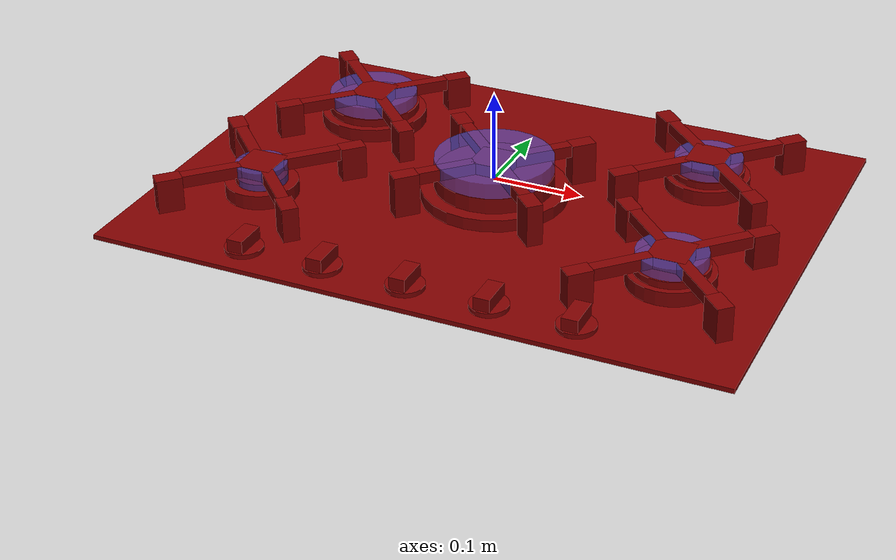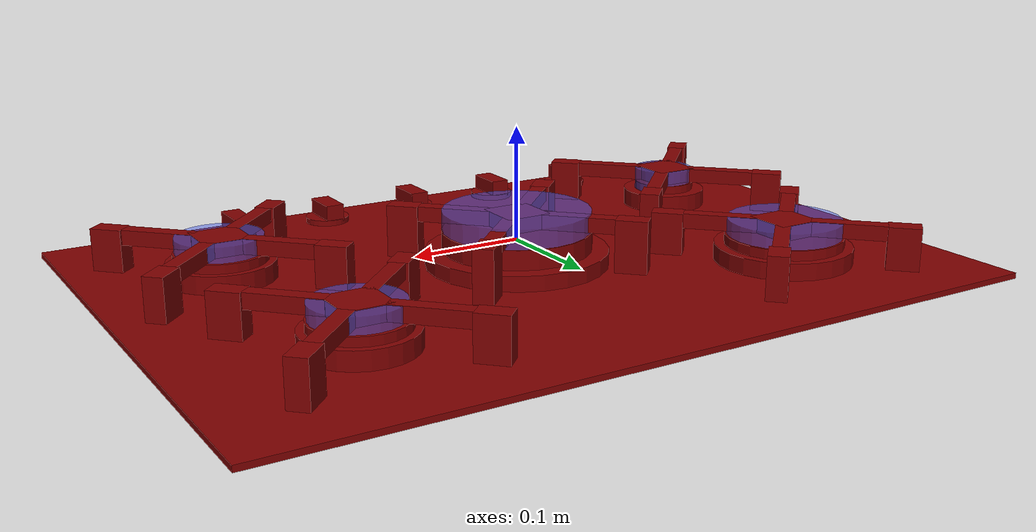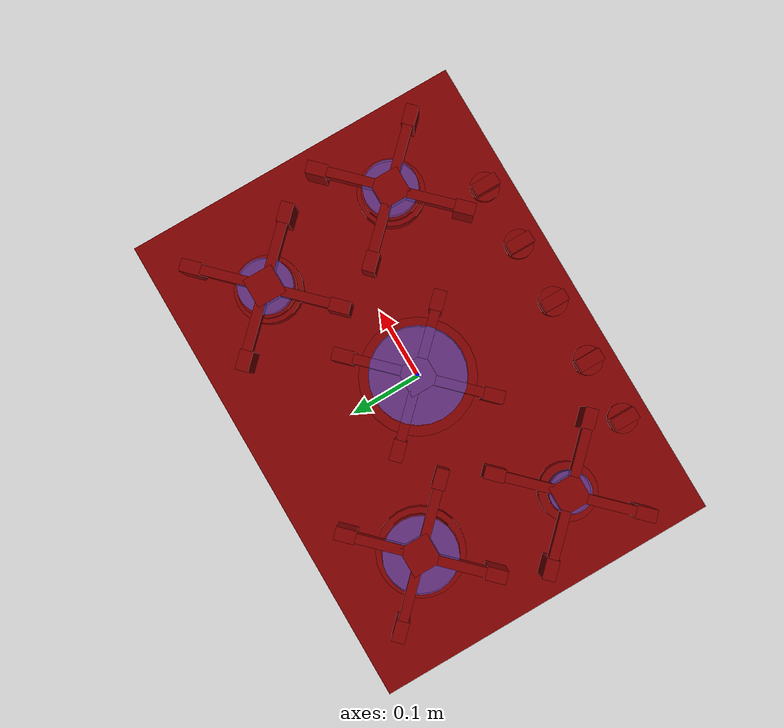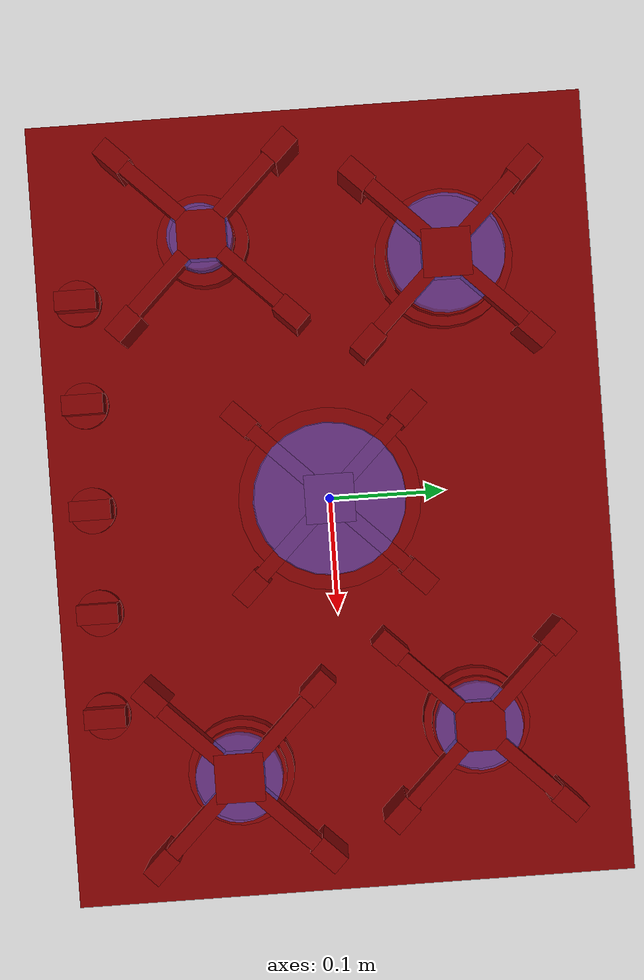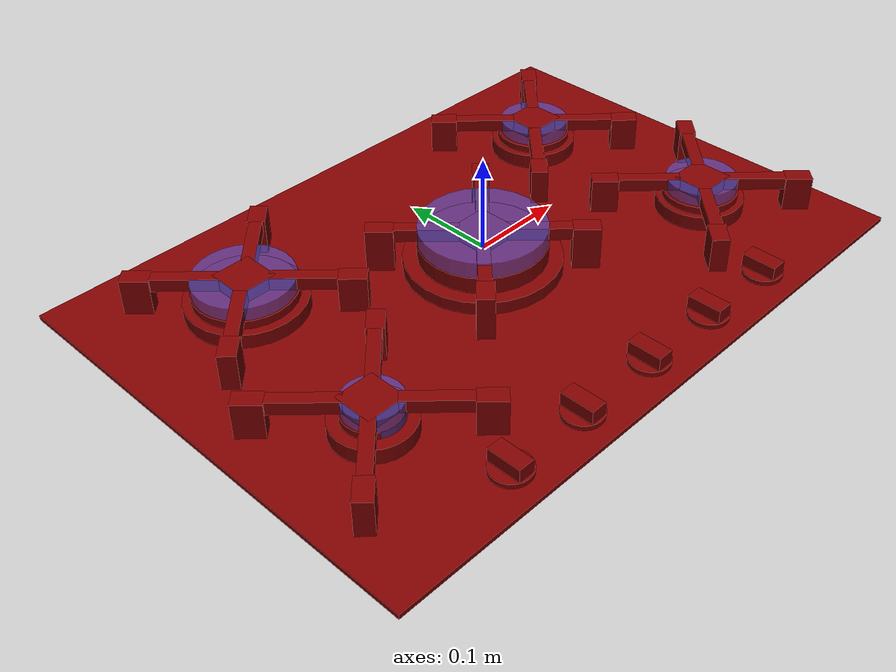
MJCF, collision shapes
<?xml version='1.0' encoding='UTF-8'?>
<mujoco model="model">
  <compiler angle="radian"/>
  <asset>
    <mesh file="visuals/knob_center.obj" name="knob_center_vis"/>
    <mesh file="visuals/knob_front_left.obj" name="knob_front_left_vis"/>
    <mesh file="visuals/knob_front_right.obj" name="knob_front_right_vis"/>
    <mesh file="visuals/knob_rear_left.obj" name="knob_rear_left_vis"/>
    <mesh file="visuals/knob_rear_right.obj" name="knob_rear_right_vis"/>
    <mesh file="visuals/Body001.obj" name="Body001_vis"/>
    <mesh file="visuals/Body002.obj" name="Body002_vis"/>
    <texture file="visuals/T_BC001.png" name="Body001_material" type="2d"/>
    <material name="Body001_material" rgba="1 1 1 1.0" texture="Body001_material" shininess="0.4472135901451111" specular="0.7"/>
    <texture file="visuals/T_BC001.png" name="knob_center_material" type="2d"/>
    <material name="knob_center_material" rgba="1 1 1 1.0" texture="knob_center_material" shininess="0.4472135901451111" specular="0.3103448502657381"/>
    <texture file="visuals/T_BC001.png" name="knob_front_left_material" type="2d"/>
    <material name="knob_front_left_material" rgba="1 1 1 1.0" texture="knob_front_left_material" shininess="0.4472135901451111" specular="0.3103448502657381"/>
    <texture file="visuals/T_BC001.png" name="knob_front_right_material" type="2d"/>
    <material name="knob_front_right_material" rgba="1 1 1 1.0" texture="knob_front_right_material" shininess="0.4472135901451111" specular="0.3103448502657381"/>
    <texture file="visuals/T_BC001.png" name="knob_rear_left_material" type="2d"/>
    <material name="knob_rear_left_material" rgba="1 1 1 1.0" texture="knob_rear_left_material" shininess="0.4472135901451111" specular="0.3103448502657381"/>
    <texture file="visuals/T_BC001.png" name="knob_rear_right_material" type="2d"/>
    <material name="knob_rear_right_material" rgba="1 1 1 1.0" texture="knob_rear_right_material" shininess="0.4472135901451111" specular="0.3103448502657381"/>
    <texture file="visuals/T_BC001.png" name="Body002_material" type="2d"/>
    <material name="Body002_material" rgba="1 1 1 1.0" texture="Body002_material" shininess="0.4472135901451111" specular="0.3103448502657381"/>
  </asset>
  <default>
    <default class="visual">
      <geom conaffinity="0" contype="0" group="1" type="mesh"/>
    </default>
    <default class="collision">
      <geom group="0" rgba="0.5 0 0 0.5"/>
    </default>
    <default class="spawn">
      <geom group="0" rgba="1 1 1 0.5" contype="0" conaffinity="0"/>
      <site group="0" rgba="1 1 1 0.5"/>
    </default>
    <default class="region">
      <geom group="1" conaffinity="0" contype="0" rgba="0 1 0 0"/>
    </default>
  </default>
  <worldbody>
    <body>
      <body name="object">
        <site type="cylinder" rgba="0.3 0.4 1 0.5" size="0.037646256387233734 0.013886827044188976" pos="0.20518821477890015 0.11482580006122589 0.0023632096126675606" name="burner_on_rear_right"/>
        <site type="cylinder" rgba="0.3 0.4 1 0.5" size="0.050764523446559906 0.013934074901044369" pos="-0.2051640748977661 0.11541546136140823 0.0027812246698886156" name="burner_on_rear_left"/>
        <site type="cylinder" rgba="0.3 0.4 1 0.5" size="0.03772476688027382 0.013412759639322758" pos="0.2352708876132965 -0.09508250653743744 0.0029436019249260426" name="burner_on_front_right"/>
        <site type="cylinder" rgba="0.3 0.4 1 0.5" size="0.02843535505235195 0.01365493144840002" pos="-0.23370617628097534 -0.09594857692718506 0.002861478365957737" name="burner_on_front_left"/>
        <site type="cylinder" rgba="0.3 0.4 1 0.5" size="0.06542050093412399 0.016313862055540085" pos="-9.237730409950018e-06 -0.00022010214161127806 0.011241933330893517" name="burner_on_center"/>
        <geom mesh="Body001_vis" type="mesh" solimp="0.998 0.998 0.001" solref="0.001 1" density="100" friction="0.95 0.3 0.1" class="visual" material="Body001_material"/>
        <geom class="collision" type="box" pos="0.0 -0.00010152636968996376 -0.023606056347489357" size="0.34981995820999146 0.24872340261936188 0.0025431355461478233" quat="1.0 0.0 0.0 0.0"/>
        <body name="knob_center">
          <joint axis="0.0 0.0 1.0" pos="-0.004781246185302734 -0.21114622056484222 -0.01152818650007248" limited="true" name="knob_center_joint" range="0.0 3.6651914291880923" type="hinge" damping="0.05" armature="0.001"/>
          <geom mesh="knob_center_vis" type="mesh" solimp="0.998 0.998 0.001" solref="0.001 1" density="100" friction="0.95 0.3 0.1" class="visual" material="knob_center_material"/>
          <geom class="collision" type="cylinder" pos="-0.004177682101726532 -0.2113659530878067 -0.01804817095398903" size="0.020649556070566177 0.002601386047899723" quat="1.0 0.0 0.0 0.0"/>
          <geom class="collision" type="box" pos="-0.004684634506702423 -0.2109227180480957 -0.00935716088861227" size="0.008751471526920795 0.018220702186226845 0.008115699514746666" quat="1.0 0.0 0.0 0.0"/>
        </body>
        <body name="knob_front_left">
          <joint axis="0.0 0.0 1.0" pos="-0.18965204060077667 -0.21114622056484222 -0.01152818650007248" limited="true" name="knob_front_left_joint" range="0.0 3.6651914291880923" type="hinge" damping="0.05" armature="0.001"/>
          <geom mesh="knob_front_left_vis" type="mesh" solimp="0.998 0.998 0.001" solref="0.001 1" density="100" friction="0.95 0.3 0.1" class="visual" material="knob_front_left_material"/>
          <geom class="collision" type="cylinder" pos="-0.1891675889492035 -0.2113659530878067 -0.01804817095398903" size="0.020649556070566177 0.002601386047899723" quat="1.0 0.0 0.0 0.0"/>
          <geom class="collision" type="box" pos="-0.18967454135417938 -0.2109227180480957 -0.00935716088861227" size="0.008751466870307922 0.018220694735646248 0.008115697652101517" quat="1.0 0.0 0.0 0.0"/>
        </body>
        <body name="knob_front_right">
          <joint axis="0.0 0.0 1.0" pos="0.1795564889907837 -0.21114622056484222 -0.01152818650007248" limited="true" name="knob_front_right_joint" range="0.0 3.6651914291880923" type="hinge" damping="0.05" armature="0.001"/>
          <geom mesh="knob_front_right_vis" type="mesh" solimp="0.998 0.998 0.001" solref="0.001 1" density="100" friction="0.95 0.3 0.1" class="visual" material="knob_front_right_material"/>
          <geom class="collision" type="cylinder" pos="0.17938269674777985 -0.2113659530878067 -0.01804817095398903" size="0.020649556070566177 0.002601386047899723" quat="1.0 0.0 0.0 0.0"/>
          <geom class="collision" type="box" pos="0.17887574434280396 -0.2109227180480957 -0.00935716088861227" size="0.008751475252211094 0.01822071149945259 0.008115701377391815" quat="1.0 0.0 0.0 0.0"/>
        </body>
        <body name="knob_rear_left">
          <joint axis="0.0 0.0 1.0" pos="-0.09739432483911514 -0.21114622056484222 -0.01152818650007248" limited="true" name="knob_rear_left_joint" range="0.0 3.6651914291880923" type="hinge" damping="0.05" armature="0.001"/>
          <geom mesh="knob_rear_left_vis" type="mesh" solimp="0.998 0.998 0.001" solref="0.001 1" density="100" friction="0.95 0.3 0.1" class="visual" material="knob_rear_left_material"/>
          <geom class="collision" type="cylinder" pos="-0.09775850176811218 -0.2113659530878067 -0.01804817095398903" size="0.020649556070566177 0.002601386047899723" quat="1.0 0.0 0.0 0.0"/>
          <geom class="collision" type="box" pos="-0.09805980324745178 -0.2109227180480957 -0.00935716088861227" size="0.008751469664275646 0.018220698460936546 0.008115698583424091" quat="1.0 0.0 0.0 0.0"/>
        </body>
        <body name="knob_rear_right">
          <joint axis="0.0 0.0 1.0" pos="0.0874764621257782 -0.21114622056484222 -0.01152818650007248" limited="true" name="knob_rear_right_joint" range="0.0 3.6651914291880923" type="hinge" damping="0.05" armature="0.001"/>
          <geom mesh="knob_rear_right_vis" type="mesh" solimp="0.998 0.998 0.001" solref="0.001 1" density="100" friction="0.95 0.3 0.1" class="visual" material="knob_rear_right_material"/>
          <geom class="collision" type="cylinder" pos="0.08741695433855057 -0.2113659530878067 -0.01804817095398903" size="0.020649556070566177 0.002601386047899723" quat="1.0 0.0 0.0 0.0"/>
          <geom class="collision" type="box" pos="0.08691000193357468 -0.2109227180480957 -0.00935716088861227" size="0.008751473389565945 0.018220707774162292 0.00811570044606924" quat="1.0 0.0 0.0 0.0"/>
        </body>
        <body name="Body002">
          <geom mesh="Body002_vis" type="mesh" solimp="0.998 0.998 0.001" solref="0.001 1" density="100" friction="0.95 0.3 0.1" class="visual" material="Body002_material"/>
          <geom class="collision" type="cylinder" pos="0.0 0.0 -0.014684646390378475" size="0.08087969571352005 0.007292779628187418" quat="1.0 0.0 0.0 0.0"/>
          <geom class="collision" type="cylinder" pos="0.0 0.0 -0.004071259871125221" size="0.06599336862564087 0.014198735356330872" quat="1.0 0.0 0.0 0.0"/>
          <geom class="collision" type="cylinder" pos="-0.23466601967811584 -0.09524428099393845 -0.003128181677311659" size="0.028715677559375763 0.006100674159824848" quat="1.0 0.0 0.0 0.0"/>
          <geom class="collision" type="cylinder" pos="-0.23466601967811584 -0.09558387100696564 -0.01278682891279459" size="0.040325358510017395 0.008080662228167057" quat="1.0 0.0 0.0 0.0"/>
          <geom class="collision" type="cylinder" pos="-0.20493434369564056 0.11508061736822128 -0.01825105771422386" size="0.06089472025632858 0.012202486395835876" quat="1.0 0.0 0.0 0.0"/>
          <geom class="collision" type="cylinder" pos="-0.20493434369564056 0.11559342592954636 -0.0059404531493783" size="0.052325379103422165 0.008841805160045624" quat="1.0 0.0 0.0 0.0"/>
          <geom class="collision" type="cylinder" pos="0.2042791098356247 0.11553427577018738 -0.004027435556054115" size="0.040254417806863785 0.006802086252719164" quat="1.0 0.0 0.0 0.0"/>
          <geom class="collision" type="cylinder" pos="0.2042791098356247 0.11513976752758026 -0.014519266784191132" size="0.046846892684698105 0.009387490339577198" quat="1.0 0.0 0.0 0.0"/>
          <geom class="collision" type="cylinder" pos="0.2348407506942749 -0.09477153420448303 -0.014519266784191132" size="0.046846892684698105 0.009387490339577198" quat="1.0 0.0 0.0 0.0"/>
          <geom class="collision" type="cylinder" pos="0.2348407506942749 -0.09437702596187592 -0.004027435556054115" size="0.040254417806863785 0.006802086252719164" quat="1.0 0.0 0.0 0.0"/>
          <geom class="collision" type="box" pos="-6.755338836228475e-05 -8.150098437909037e-05 0.01903052069246769" size="0.021046988666057587 0.02128998562693596 0.006638393737375736" quat="1.0 0.0 0.0 0.0"/>
          <geom class="collision" type="box" pos="-0.03920435160398483 0.03924737125635147 0.01903052069246769" size="0.03268332779407501 0.006654288619756699 0.006638393737375736" quat="0.9223182201385498 0.0 -0.0 -0.3864312469959259"/>
          <geom class="collision" type="box" pos="-0.07194513082504272 0.07219017297029495 0.002201380906626582" size="0.014080856926739216 0.008914109319448471 0.02346753142774105" quat="0.9223182201385498 0.0 -0.0 -0.3864312469959259"/>
          <geom class="collision" type="box" pos="0.07205472886562347 0.07219017297029495 0.002201380906626582" size="0.014080856926739216 0.008914109319448471 0.02346753142774105" quat="0.9223182201385498 0.0 0.0 0.3864312469959259"/>
          <geom class="collision" type="box" pos="0.03931394964456558 0.03924737125635147 0.01903052069246769" size="0.03268332779407501 0.006654288619756699 0.006638393737375736" quat="0.9223182201385498 0.0 0.0 0.3864312469959259"/>
          <geom class="collision" type="box" pos="0.03931394964456558 -0.03963225707411766 0.01903052069246769" size="0.03268332779407501 0.006654288619756699 0.006638393737375736" quat="0.9223182201385498 0.0 -0.0 -0.3864312469959259"/>
          <geom class="collision" type="box" pos="0.07205472886562347 -0.07257506251335144 0.002201380906626582" size="0.014080856926739216 0.008914109319448471 0.02346753142774105" quat="0.9223182201385498 0.0 -0.0 -0.3864312469959259"/>
          <geom class="collision" type="box" pos="-0.07279013097286224 -0.07257506251335144 0.002201380906626582" size="0.014080856926739216 0.008914109319448471 0.02346753142774105" quat="0.9223182201385498 0.0 0.0 0.3864312469959259"/>
          <geom class="collision" type="box" pos="-0.04004935175180435 -0.03963225707411766 0.01903052069246769" size="0.03268332779407501 0.006654288619756699 0.006638393737375736" quat="0.9223182201385498 0.0 0.0 0.3864312469959259"/>
          <geom class="collision" type="box" pos="0.16495850682258606 0.07601319253444672 0.010246188379824162" size="0.03268332779407501 0.006654288619756699 0.006638393737375736" quat="0.9223182201385498 0.0 0.0 0.3864312469959259"/>
          <geom class="collision" type="box" pos="0.13221772015094757 0.043070390820503235 -0.0065829516388475895" size="0.014080856926739216 0.008914109319448471 0.02346753142774105" quat="0.9223182201385498 0.0 0.0 0.3864312469959259"/>
          <geom class="collision" type="box" pos="0.2770625948905945 0.043070390820503235 -0.0065829516388475895" size="0.014080856926739216 0.008914109319448471 0.02346753142774105" quat="0.9223182201385498 0.0 -0.0 -0.3864312469959259"/>
          <geom class="collision" type="box" pos="0.2443217933177948 0.07601319253444672 0.010246188379824162" size="0.03268332779407501 0.006654288619756699 0.006638393737375736" quat="0.9223182201385498 0.0 -0.0 -0.3864312469959259"/>
          <geom class="collision" type="box" pos="0.2443217933177948 0.15489283204078674 0.010246188379824162" size="0.03268332779407501 0.006654288619756699 0.006638393737375736" quat="0.9223182201385498 0.0 0.0 0.3864312469959259"/>
          <geom class="collision" type="box" pos="0.2770625948905945 0.18783563375473022 -0.0065829516388475895" size="0.014080856926739216 0.008914109319448471 0.02346753142774105" quat="0.9223182201385498 0.0 0.0 0.3864312469959259"/>
          <geom class="collision" type="box" pos="0.1330627202987671 0.18783563375473022 -0.0065829516388475895" size="0.014080856926739216 0.008914109319448471 0.02346753142774105" quat="0.9223182201385498 0.0 -0.0 -0.3864312469959259"/>
          <geom class="collision" type="box" pos="0.16580349206924438 0.15489283204078674 0.010246188379824162" size="0.03268332779407501 0.006654288619756699 0.006638393737375736" quat="0.9223182201385498 0.0 -0.0 -0.3864312469959259"/>
          <geom class="collision" type="box" pos="0.2049403041601181 0.11556395143270493 0.010246188379824162" size="0.021046988666057587 0.02128998562693596 0.006638393737375736" quat="1.0 0.0 0.0 0.0"/>
          <geom class="collision" type="box" pos="-0.20449133217334747 0.11556395143270493 0.010455380193889141" size="0.021046988666057587 0.02128998562693596 0.006638393737375736" quat="1.0 0.0 0.0 0.0"/>
          <geom class="collision" type="box" pos="-0.2436281442642212 0.15489283204078674 0.010455380193889141" size="0.03268332779407501 0.006654288619756699 0.006638393737375736" quat="0.9223182201385498 0.0 -0.0 -0.3864312469959259"/>
          <geom class="collision" type="box" pos="-0.2763689160346985 0.18783563375473022 -0.00637375982478261" size="0.014080856926739216 0.008914109319448471 0.02346753142774105" quat="0.9223182201385498 0.0 -0.0 -0.3864312469959259"/>
          <geom class="collision" type="box" pos="-0.1323690414428711 0.18783563375473022 -0.00637375982478261" size="0.014080856926739216 0.008914109319448471 0.02346753142774105" quat="0.9223182201385498 0.0 0.0 0.3864312469959259"/>
          <geom class="collision" type="box" pos="-0.16510984301567078 0.15489283204078674 0.010455380193889141" size="0.03268332779407501 0.006654288619756699 0.006638393737375736" quat="0.9223182201385498 0.0 0.0 0.3864312469959259"/>
          <geom class="collision" type="box" pos="-0.16510984301567078 0.07601319253444672 0.010455380193889141" size="0.03268332779407501 0.006654288619756699 0.006638393737375736" quat="0.9223182201385498 0.0 -0.0 -0.3864312469959259"/>
          <geom class="collision" type="box" pos="-0.1323690414428711 0.043070390820503235 -0.00637375982478261" size="0.014080856926739216 0.008914109319448471 0.02346753142774105" quat="0.9223182201385498 0.0 -0.0 -0.3864312469959259"/>
          <geom class="collision" type="box" pos="-0.2772139310836792 0.043070390820503235 -0.00637375982478261" size="0.014080856926739216 0.008914109319448471 0.02346753142774105" quat="0.9223182201385498 0.0 0.0 0.3864312469959259"/>
          <geom class="collision" type="box" pos="-0.24447312951087952 0.07601319253444672 0.010455380193889141" size="0.03268332779407501 0.006654288619756699 0.006638393737375736" quat="0.9223182201385498 0.0 0.0 0.3864312469959259"/>
          <geom class="collision" type="box" pos="-0.2748446464538574 -0.1336672008037567 0.010455380193889141" size="0.03268332779407501 0.006654288619756699 0.006638393737375736" quat="0.9223182201385498 0.0 0.0 0.3864312469959259"/>
          <geom class="collision" type="box" pos="-0.3075854480266571 -0.1666100025177002 -0.00637375982478261" size="0.014080856926739216 0.008914109319448471 0.02346753142774105" quat="0.9223182201385498 0.0 0.0 0.3864312469959259"/>
          <geom class="collision" type="box" pos="-0.1627405732870102 -0.1666100025177002 -0.00637375982478261" size="0.014080856926739216 0.008914109319448471 0.02346753142774105" quat="0.9223182201385498 0.0 -0.0 -0.3864312469959259"/>
          <geom class="collision" type="box" pos="-0.19548137485980988 -0.1336672008037567 0.010455380193889141" size="0.03268332779407501 0.006654288619756699 0.006638393737375736" quat="0.9223182201385498 0.0 -0.0 -0.3864312469959259"/>
          <geom class="collision" type="box" pos="-0.19548137485980988 -0.05478756129741669 0.010455380193889141" size="0.03268332779407501 0.006654288619756699 0.006638393737375736" quat="0.9223182201385498 0.0 0.0 0.3864312469959259"/>
          <geom class="collision" type="box" pos="-0.1627405732870102 -0.021844759583473206 -0.00637375982478261" size="0.014080856926739216 0.008914109319448471 0.02346753142774105" quat="0.9223182201385498 0.0 0.0 0.3864312469959259"/>
          <geom class="collision" type="box" pos="-0.3067404329776764 -0.021844759583473206 -0.00637375982478261" size="0.014080856926739216 0.008914109319448471 0.02346753142774105" quat="0.9223182201385498 0.0 -0.0 -0.3864312469959259"/>
          <geom class="collision" type="box" pos="-0.2739996612071991 -0.05478756129741669 0.010455380193889141" size="0.03268332779407501 0.006654288619756699 0.006638393737375736" quat="0.9223182201385498 0.0 -0.0 -0.3864312469959259"/>
          <geom class="collision" type="box" pos="-0.23486286401748657 -0.0941164419054985 0.010455380193889141" size="0.021046988666057587 0.02128998562693596 0.006638393737375736" quat="1.0 0.0 0.0 0.0"/>
          <geom class="collision" type="box" pos="0.23472779989242554 -0.09465905278921127 0.009904460050165653" size="0.021046988666057587 0.02128998562693596 0.006638393737375736" quat="1.0 0.0 0.0 0.0"/>
          <geom class="collision" type="box" pos="0.195591002702713 -0.05533016845583916 0.009904460050165653" size="0.03268332779407501 0.006654288619756699 0.006638393737375736" quat="0.9223182201385498 0.0 -0.0 -0.3864312469959259"/>
          <geom class="collision" type="box" pos="0.16285023093223572 -0.022387368604540825 -0.006924679968506098" size="0.014080856926739216 0.008914109319448471 0.02346753142774105" quat="0.9223182201385498 0.0 -0.0 -0.3864312469959259"/>
          <geom class="collision" type="box" pos="0.3068500757217407 -0.022387368604540825 -0.006924679968506098" size="0.014080856926739216 0.008914109319448471 0.02346753142774105" quat="0.9223182201385498 0.0 0.0 0.3864312469959259"/>
          <geom class="collision" type="box" pos="0.2741093039512634 -0.05533016845583916 0.009904460050165653" size="0.03268332779407501 0.006654288619756699 0.006638393737375736" quat="0.9223182201385498 0.0 0.0 0.3864312469959259"/>
          <geom class="collision" type="box" pos="0.2741093039512634 -0.13420981168746948 0.009904460050165653" size="0.03268332779407501 0.006654288619756699 0.006638393737375736" quat="0.9223182201385498 0.0 -0.0 -0.3864312469959259"/>
          <geom class="collision" type="box" pos="0.3068500757217407 -0.16715261340141296 -0.006924679968506098" size="0.014080856926739216 0.008914109319448471 0.02346753142774105" quat="0.9223182201385498 0.0 -0.0 -0.3864312469959259"/>
          <geom class="collision" type="box" pos="0.162005215883255 -0.16715261340141296 -0.006924679968506098" size="0.014080856926739216 0.008914109319448471 0.02346753142774105" quat="0.9223182201385498 0.0 0.0 0.3864312469959259"/>
          <geom class="collision" type="box" pos="0.1947460174560547 -0.13420981168746948 0.009904460050165653" size="0.03268332779407501 0.006654288619756699 0.006638393737375736" quat="0.9223182201385498 0.0 0.0 0.3864312469959259"/>
        </body>
        <geom class="region" name="reg_main" type="box" pos="7.450580596923828e-09 4.440892098500626e-16 -0.02281610481441021" size="0.3499999940395355 0.25 0.0026840437203645706"/>
      </body>
    </body>
  </worldbody>
  <actuator>
    <motor name="knob_center_joint_actuator" joint="knob_center_joint" gear="10"/>
    <motor name="knob_front_left_joint_actuator" joint="knob_front_left_joint" gear="10"/>
    <motor name="knob_front_right_joint_actuator" joint="knob_front_right_joint" gear="10"/>
    <motor name="knob_rear_left_joint_actuator" joint="knob_rear_left_joint" gear="10"/>
    <motor name="knob_rear_right_joint_actuator" joint="knob_rear_right_joint" gear="10"/>
  </actuator>
</mujoco>
